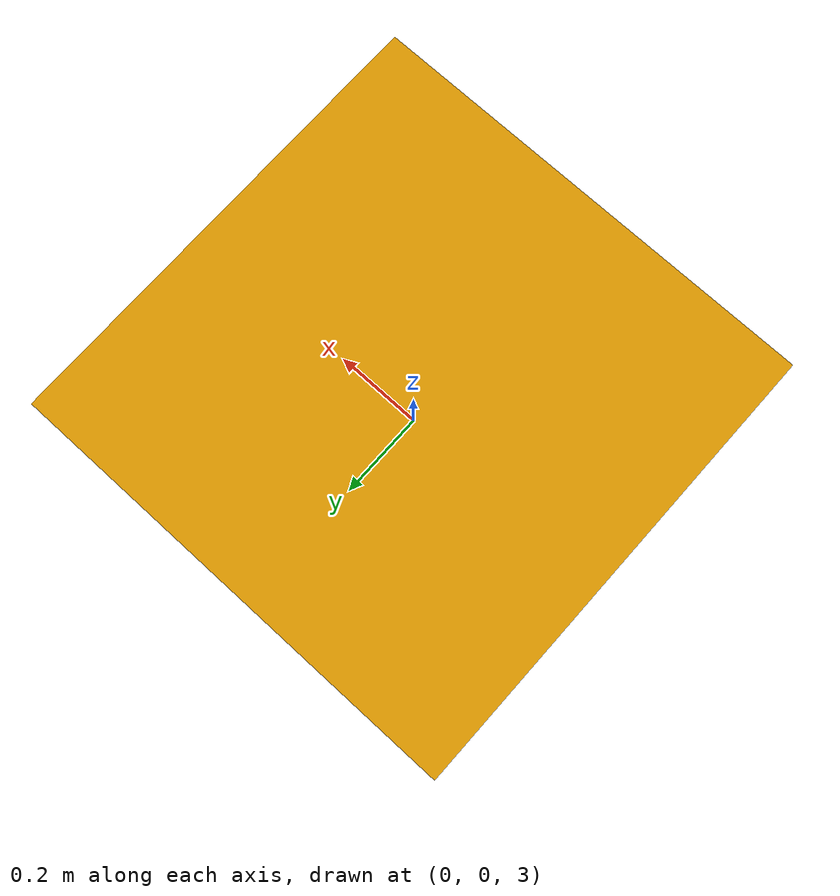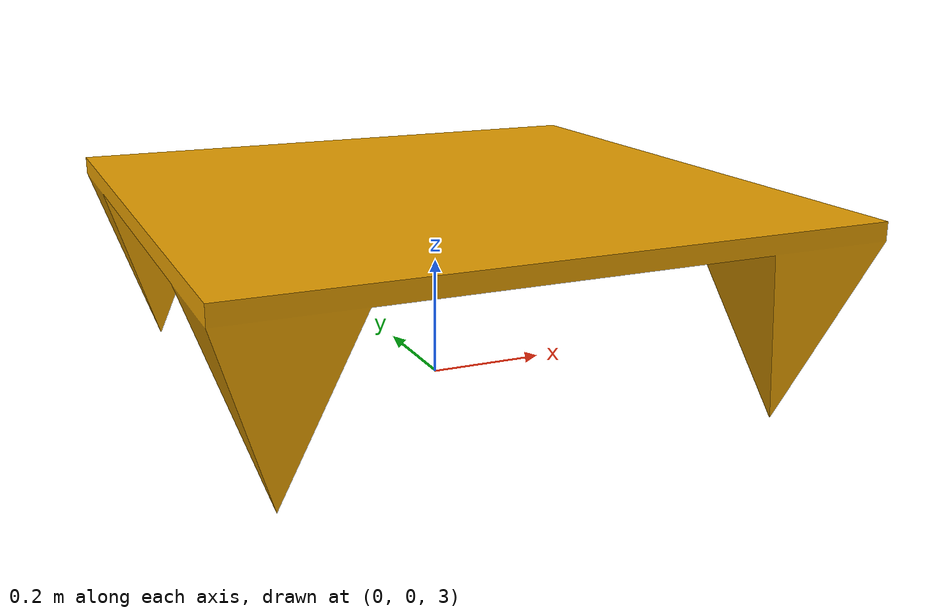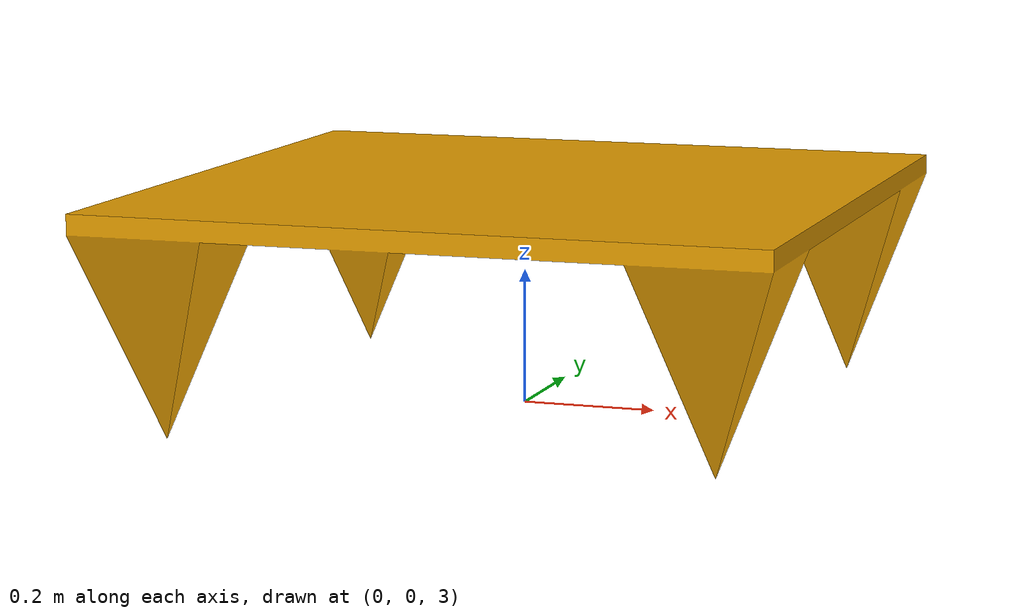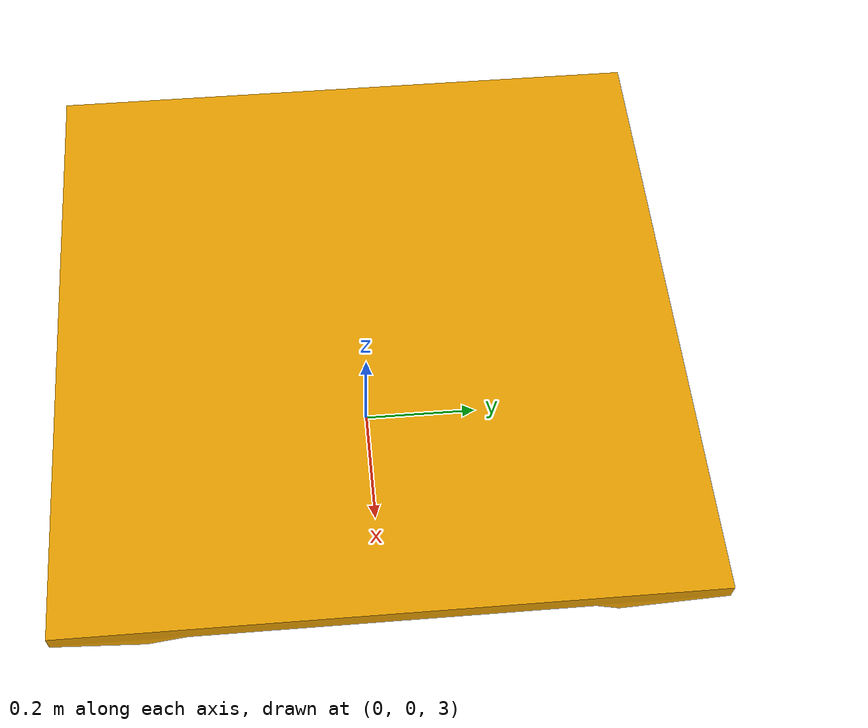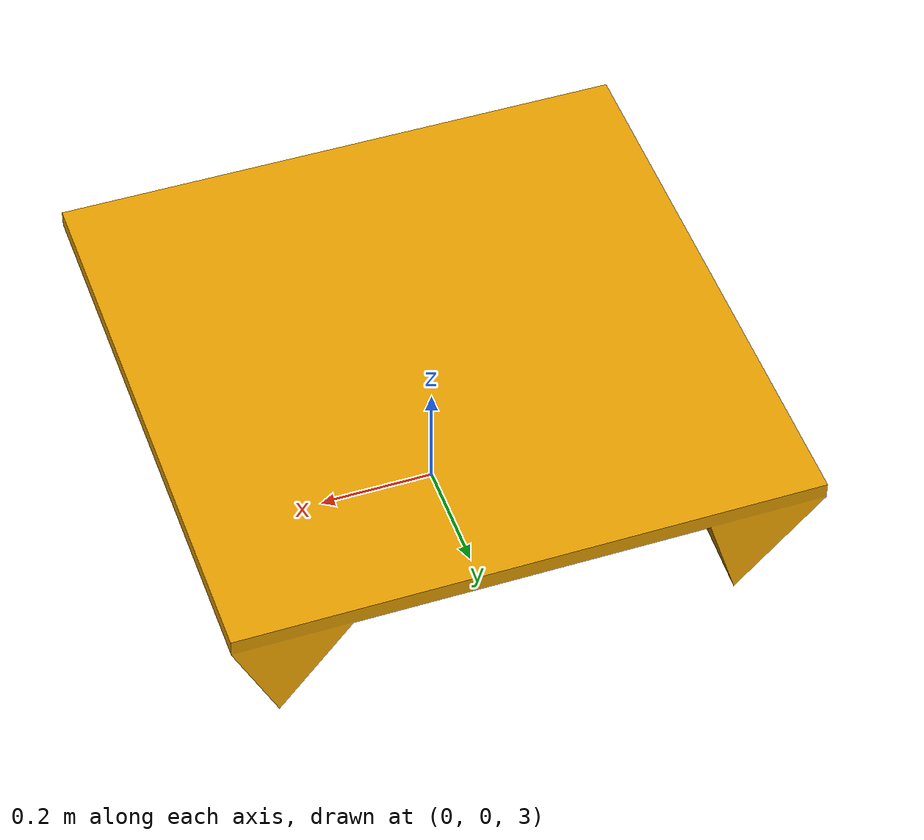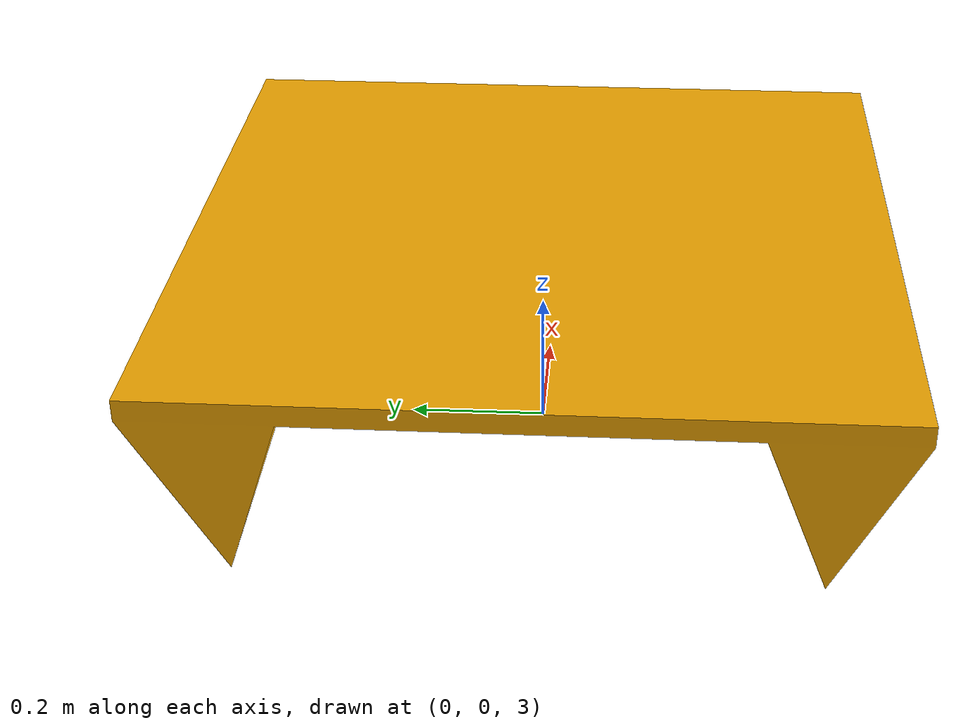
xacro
<?xml version="1.0"?>
<robot name="omori" xmlns:xacro="http://www.ros.org/wiki/xacro">

<link name="omori">
    <visual>
        <origin xyz="0 0 3" rpy="0 0 0"/>
      <geometry>
        <mesh filename="package://quarter_test/models/omori.dae"/>
      </geometry>
    </visual>

    <collision name="omori">
        <origin xyz="0 0 3" rpy="0 0 0"/>
      <geometry>
        <mesh filename="package://quarter_test/models/omori.dae"/>
      </geometry>
    </collision>

    <inertial>
        <origin xyz="0 0 3" rpy="0 0 0"/>
        <mass value="79.56"/>
        <inertia ixx="11.43"  ixy="0"  ixz="0" iyy="11.43" iyz="0" izz="21.09"/>
    </inertial>
</link>

<gazebo reference="omori">
    <mu1 value="200" />
    <mu2 value="100" />
    <selfCollide>true</selfCollide>
</gazebo>

</robot>
